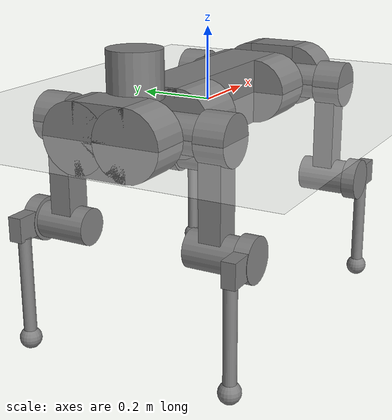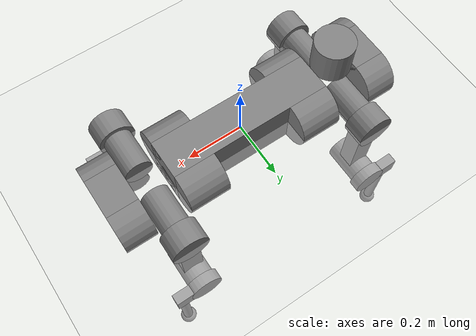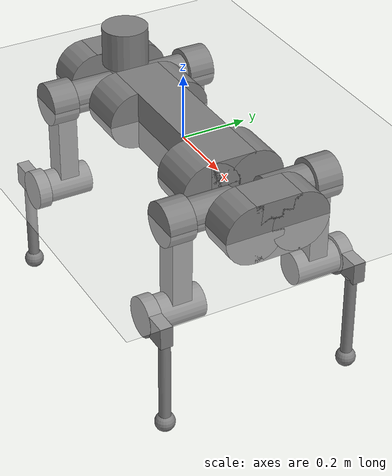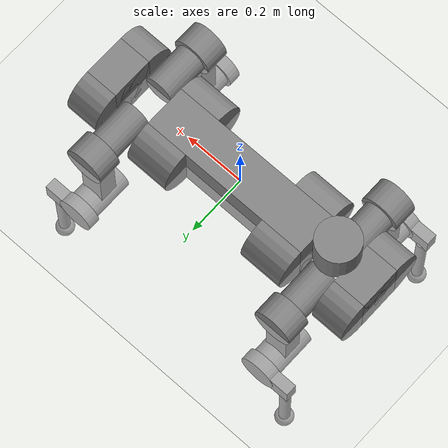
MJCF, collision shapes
<mujoco model="anymal_c">
  <compiler angle="radian" meshdir="assets" texturedir="assets" autolimits="true"/>

  <option cone="pyramidal" impratio="100" timestep="0.005"/>

  <default>
    <geom solref="-1000 -80"/>
    <material specular="0" shininess="0.25"/>
    <default class="anymal_c">
      <joint damping="1" frictionloss="0.1"/>

      <default class="visual">
        <geom type="mesh" contype="0" conaffinity="0" group="2"/>
        <default class="visual_zflip">
          <geom quat="0 0 0 1"/>
        </default>
      </default>
      <default class="collision">
        <geom group="3" type="cylinder"/>
        <default class="foot">
          <geom type="sphere" size="0.03" pos="0 0 0.02325" priority="1" solimp="0.015 1 0.031" condim="6"
            friction="0.8 0.02 0.01"/>
        </default>
      </default>
    </default>
    <motor ctrllimited="true" ctrlrange="-80.0 80.0"/>
  </default>

  <asset>
    <texture type="skybox" builtin="gradient" rgb1=".3 .5 .7" rgb2="0 0 0" width="32" height="512"/>

    <texture name="texplane" type="2d" builtin="checker" rgb1="0.5 0.6 0.7" rgb2="0.2 0.3 0.4" width="100" height="100"/>
    <material name="MatPlane" reflectance="0.5" texture="texplane" texrepeat="1 1" texuniform="true"></material>

    <texture name="grid" type="2d" builtin="checker" rgb1="0.5 0.6 0.7" rgb2="0.2 0.3 0.4" width="512" height="512"/>
    <material name="grid" reflectance="0.5" texture="grid" texrepeat="1 1" texuniform="true"></material>

    <material name="black_plastic" rgba="0.007 0.007 0.007 1"/>
    <material name="green" rgba="0.052 0.178 0.033 1"/>
    <material name="red" rgba="0.178 0.006 0.005 1"/>
    <material name="yellow" rgba="0.178 0.119 0.006 1"/>
    <material name="lwl" rgba="0.8 0.8 0.8 1"/>
    <material name="base" texture="base"/>
    <material name="top_shell" texture="top_shell"/>
    <material name="bottom_shell" texture="bottom_shell"/>
    <material name="hip_l" texture="hip_l"/>
    <material name="thigh" texture="thigh"/>
    <material name="shank_l" texture="shank_l"/>
    <material name="foot" texture="foot"/>
    <material name="hip_r" texture="hip_r"/>
    <material name="shank" texture="shank_r"/>
    <material name="hatch" texture="hatch"/>
    <material name="remote" texture="remote"/>
    <material name="handle" texture="handle"/>
    <material name="face" texture="face"/>
    <material name="depth_camera" texture="depth_camera"/>
    <material name="wide_angle_camera" texture="wide_angle_camera"/>
    <material name="battery" texture="battery"/>
    <material name="lidar_cage" texture="lidar_cage"/>
    <material name="lidar" texture="lidar"/>
    <material name="drive" texture="drive"/>

    <texture type="2d" name="base" file="base.png"/>
    <texture type="2d" name="top_shell" file="top_shell.png"/>
    <texture type="2d" name="bottom_shell" file="bottom_shell.png"/>
    <texture type="2d" name="remote" file="remote.png"/>
    <texture type="2d" name="hatch" file="hatch.png"/>
    <texture type="2d" name="handle" file="handle.png"/>
    <texture type="2d" name="face" file="face.png"/>
    <texture type="2d" name="battery" file="battery.png"/>
    <texture type="2d" name="lidar_cage" file="lidar_cage.png"/>
    <texture type="2d" name="depth_camera" file="depth_camera.png"/>
    <texture type="2d" name="wide_angle_camera" file="wide_angle_camera.png"/>
    <texture type="2d" name="lidar" file="lidar.png"/>
    <texture type="2d" name="drive" file="drive.png"/>
    <texture type="2d" name="hip_l" file="hip_l.png"/>
    <texture type="2d" name="shank_l" file="shank_l.png"/>
    <texture type="2d" name="foot" file="foot.png"/>
    <texture type="2d" name="thigh" file="thigh.png"/>
    <texture type="2d" name="shank_r" file="shank_r.png"/>
    <texture type="2d" name="hip_r" file="hip_r.png"/>

    <mesh file="base_0.obj"/>
    <mesh file="base_1.obj"/>
    <mesh file="base_2.obj"/>
    <mesh file="base_3.obj"/>
    <mesh file="base_4.obj"/>
    <mesh file="base_5.obj"/>
    <mesh file="top_shell.obj"/>
    <mesh file="bottom_shell.obj"/>
    <mesh file="remote.obj"/>
    <mesh file="handle.obj"/>
    <mesh file="face.obj"/>
    <mesh file="wide_angle_camera.obj"/>
    <mesh file="depth_camera.obj"/>
    <mesh file="battery.obj"/>
    <mesh file="lidar_cage.obj"/>
    <mesh file="lidar.obj"/>
    <mesh file="drive.obj"/>
    <mesh file="hip_l.obj"/>
    <mesh file="thigh.obj"/>
    <mesh file="shank_l.obj"/>
    <mesh file="foot.obj"/>
    <mesh file="hip_r.obj"/>
    <mesh file="hatch.obj"/>
    <mesh file="shank_r.obj"/>
  </asset>

  <worldbody>
    <geom name="floor" size="0 0 .125" type="plane" material="grid" condim="3" rgba="0.9 0.9 0.9 1"/>

    <light cutoff="100" diffuse="1 1 1" dir="-0 0 -1.3" directional="true" exponent="1" pos="0 0 1.3" specular=".1 .1 .1" castshadow="false"/>
    <light name="spotlight" mode="targetbodycom" target="trunk" pos="0 0 15"/>

    <body name="trunk" pos="0 0 0" childclass="anymal_c">
      <camera name="track" mode="trackcom" pos="0 -2 0" xyaxes="1 0 0 0 0 1"/>
      <freejoint/>

      <inertial mass="19.2035" pos="0.0025 0 0.0502071" quat="0.5 0.5 0.5 0.5" diaginertia="0.639559 0.624031 0.217374"/>

      <geom mesh="base_0" material="green" class="visual"/>
      <geom mesh="base_1" material="yellow" class="visual"/>
      <geom mesh="base_2" material="red" class="visual"/>
      <geom mesh="base_3" material="black_plastic" class="visual"/>
      <geom mesh="base_4" material="lwl" class="visual"/>
      <geom mesh="base_5" material="base" class="visual"/>
      <geom class="collision" size="0.29 0.07 0.09" type="box" name="trunk_1"/>
      <geom class="collision" size="0.09 0.0725" pos="0.2175 0.07 0" quat="1 0 1 0" name="trunk_2"/>
      <geom class="collision" size="0.09 0.0725" pos="-0.2175 0.07 0" quat="1 0 1 0" name="trunk_3"/>
      <geom class="collision" size="0.09 0.0725" pos="0.2175 -0.07 0" quat="1 0 1 0" name="trunk_4"/>
      <geom class="collision" size="0.09 0.0725" pos="-0.2175 -0.07 0" quat="1 0 1 0" name="trunk_5"/>
      <geom material="top_shell" mesh="top_shell" class="visual"/>
      <geom material="bottom_shell" mesh="bottom_shell" class="visual"/>
      <geom material="remote" mesh="remote" class="visual"/>
      <geom material="handle" mesh="handle" class="visual"/>
      <geom pos="0.4145 0 0" material="face" mesh="face" class="visual"/>
      <geom class="collision" size="0.055 0.07 0.09" pos="0.4695 0 0" type="box" name="trunk_6"/>
      <geom class="collision" size="0.09 0.055" pos="0.4695 0.07 0" quat="1 0 1 0"/>
      <geom class="collision" size="0.09 0.055" pos="0.4695 -0.07 0" quat="1 0 1 0"/>
      <geom pos="0.46165 0 -0.0292" quat="0.965926 0 0.258819 0" material="depth_camera" mesh="depth_camera"
        class="visual"/>
      <geom pos="0.513 0 0.01497" material="wide_angle_camera" mesh="wide_angle_camera" class="visual"/>
      <geom pos="-0.4145 0 0" material="face" mesh="face" class="visual_zflip"/>
      <geom class="collision" size="0.055 0.07 0.09" pos="-0.4695 0 0" quat="0 0 0 1" type="box" name="trunk_7"/>
      <geom class="collision" size="0.09 0.055" pos="-0.4695 -0.07 0" quat="0 -1 0 1"/>
      <geom class="collision" size="0.09 0.055" pos="-0.4695 0.07 0" quat="0 -1 0 1"/>
      <geom pos="-0.46165 0 -0.0292" quat="0 -0.258819 0 0.965926" material="depth_camera" mesh="depth_camera"
        class="visual"/>
      <geom pos="-0.513 0 0.01497" material="wide_angle_camera" mesh="wide_angle_camera" class="visual_zflip"/>
      <geom material="battery" mesh="battery" class="visual"/>
      <geom pos="0 0.07646 0.02905" quat="0.683013 -0.183013 0.183013 0.683013" material="depth_camera"
        mesh="depth_camera" class="visual"/>
      <geom pos="0 -0.07646 0.02905" quat="0.683013 0.183013 0.183013 -0.683013" material="depth_camera"
        mesh="depth_camera" class="visual"/>
      <geom pos="-0.364 0 0.0735" material="lidar_cage" mesh="lidar_cage" class="visual"/>
      <geom class="collision" size="0.07 0.06" pos="-0.364 0 0.1335" name="trunk_8"/>
      <geom pos="-0.364 0 0.1422" quat="1 0 0 -1" material="lidar" mesh="lidar" class="visual"/>
      <geom pos="0.2999 0.104 0" quat="0.258819 0.965926 0 0" material="drive" mesh="drive" class="visual"/>
      <geom pos="0.2999 -0.104 0" quat="0.258819 -0.965926 0 0" material="drive" mesh="drive" class="visual"/>
      <geom pos="-0.2999 0.104 0" quat="0 0 0.965926 -0.258819" material="drive" mesh="drive" class="visual"/>
      <geom pos="-0.2999 -0.104 0" quat="0 0 -0.965926 -0.258819" material="drive" mesh="drive" class="visual"/>
      <geom pos="0.116 0 0.073" material="hatch" mesh="hatch" class="visual"/>

      <body name="LF_HIP" pos="0.2999 0.104 0" quat="0.258819 0.965926 0 0">
        <inertial mass="2.781" pos="0.0566606 -0.015294 -0.00829784" quat="-0.127978 0.709783 -0.135278 0.679359"
          diaginertia="0.00585729 0.00491868 0.00329081"/>
        <joint name="LF_HAA" axis="1 0 0" range="-0.72 0.49"/>
        <geom quat="0.258819 -0.965926 0 0" material="hip_l" mesh="hip_l" class="visual"/>
        <geom pos="0.0599 -0.0725816 -0.041905" quat="0.183013 -0.683013 0.683013 0.183013" material="drive"
          mesh="drive" class="visual"/>
        <geom class="collision" size="0.05 0.07" pos="0.0599 -0.0119598 -0.006905"
          quat="-0.353553 -0.612372 0.612372 -0.353553"/>
        <body name="LF_THIGH" pos="0.0599 -0.0725816 -0.041905" quat="0.183013 -0.683013 0.683013 0.183013">
          <inertial mass="3.071" pos="0.0308147 4.64995e-05 -0.245696" quat="0.993166 -0.00515309 -0.0806592 0.0841972"
            diaginertia="0.03025 0.0298943 0.00418465"/>
          <joint name="LF_HFE" axis="1 0 0" range="-3.14 3.14"/>
          <geom quat="1 0 0 -1" material="thigh" mesh="thigh" class="visual"/>
          <geom class="collision" size="0.065 0.04" pos="0.04 0 0" quat="0.5 0.5 -0.5 -0.5"/>
          <geom class="collision" size="0.0375 0.03 0.141314" pos="0.03 0 -0.141314" quat="1 0 0 -1" type="box"/>
          <geom pos="0.1003 0 -0.285" material="drive" mesh="drive" class="visual"/>
          <geom class="collision" size="0.05 0.07" pos="0.0303 0 -0.285" quat="1 0 1 0"/>
          <body name="LF_SHANK" pos="0.1003 0 -0.285">
            <inertial mass="0.58842" pos="0.005462 -0.0612528 -0.0806598"
              quat="0.992934 -0.115904 -0.00105487 -0.0254421" diaginertia="0.0101637 0.00923838 0.00111927"/>
            <joint name="LF_KFE" axis="1 0 0" range="-3.14 3.14"/>
            <geom quat="1 0 0 -1" material="shank_l" mesh="shank_l" class="visual"/>
            <geom class="collision" size="0.06 0.02" pos="0.02 0 0" quat="0.5 0.5 -0.5 -0.5" name="LF_kfe_act"/>
            <geom class="collision" size="0.057499 0.03375 0.019" pos="0.02 -0.057499 0" quat="0.5 0.5 -0.5 -0.5"
              type="box"/>
            <geom pos="0.01305 -0.08795 -0.33797" quat="0.382683 0 0 -0.92388" material="foot" mesh="foot"
              class="visual"/>
            <geom class="collision" size="0.0175 0.141252" pos="0.01305 -0.08795 -0.168985" quat="1 0 0 -1" name="LF_calf"/>
            <geom class="foot" pos="0.01305 -0.08795 -0.31547" quat="1 0 0 -1" name="LF_foot"/>
          </body>
        </body>
      </body>
      <body name="RF_HIP" pos="0.2999 -0.104 0" quat="0.258819 -0.965926 0 0">
        <inertial mass="2.781" pos="0.0567633 0.015294 -0.00829784" quat="0.13524 0.679072 0.127985 0.710065"
          diaginertia="0.00585928 0.0049205 0.00329064"/>
        <joint name="RF_HAA" axis="1 0 0" range="-0.49 0.72"/>
        <geom quat="0.258819 0.965926 0 0" material="hip_r" mesh="hip_r" class="visual"/>
        <geom pos="0.0599 0.0725816 -0.041905" quat="0.183013 0.683013 0.683013 -0.183013" material="drive" mesh="drive"
          class="visual"/>
        <geom class="collision" size="0.05 0.07" pos="0.0599 0.0119598 -0.006905"
          quat="-0.353553 0.612372 0.612372 0.353553"/>
        <body name="RF_THIGH" pos="0.0599 0.0725816 -0.041905" quat="0.183013 0.683013 0.683013 -0.183013">
          <inertial mass="3.071" pos="0.0308147 4.64995e-05 -0.245696" quat="0.992775 -0.00512735 -0.0806685 0.0886811"
            diaginertia="0.0302511 0.0298933 0.0041845"/>
          <joint name="RF_HFE" axis="1 0 0" range="-3.14 3.14"/>
          <geom quat="1 0 0 -1" material="thigh" mesh="thigh" class="visual"/>
          <geom class="collision" size="0.065 0.04" pos="0.04 0 0" quat="0.5 0.5 0.5 0.5"/>
          <geom class="collision" size="0.0375 0.03 0.141314" pos="0.03 0 -0.141314" quat="1 0 0 1" type="box"/>
          <geom pos="0.1003 0 -0.285" material="drive" mesh="drive" class="visual"/>
          <geom class="collision" size="0.05 0.07" pos="0.0303 0 -0.285" quat="1 0 1 0"/>
          <body name="RF_SHANK" pos="0.1003 0 -0.285">
            <inertial mass="0.58842" pos="0.005462 0.0612528 -0.0806598" quat="0.992934 0.115904 -0.00105487 0.0254421"
              diaginertia="0.0101637 0.00923838 0.00111927"/>
            <joint name="RF_KFE" axis="1 0 0" range="-3.14 3.14"/>
            <geom quat="1 0 0 1" material="shank" mesh="shank_r" class="visual"/>
            <geom class="collision" size="0.06 0.02" pos="0.02 0 0" quat="0.5 0.5 0.5 0.5" name="RF_kfe_act"/>
            <geom class="collision" size="0.057499 0.03375 0.019" pos="0.02 0.057499 0" quat="0.5 0.5 0.5 0.5"
              type="box"/>
            <geom pos="0.01305 0.08795 -0.33797" quat="0.382683 0 0 0.92388" material="foot" mesh="foot" class="visual"/>
            <geom class="collision" size="0.0175 0.141252" pos="0.01305 0.08795 -0.168985" quat="1 0 0 1" name="RF_calf"/>
            <geom class="foot" pos="0.01305 0.08795 -0.31547" quat="1 0 0 1" name="RF_foot"/>
          </body>
        </body>
      </body>
      <body name="LH_HIP" pos="-0.2999 0.104 0" quat="0 0 0.965926 -0.258819">
        <inertial mass="2.781" pos="0.0567633 0.015294 -0.00829784" quat="0.13524 0.679072 0.127985 0.710065"
          diaginertia="0.00585928 0.0049205 0.00329064"/>
        <joint name="LH_HAA" axis="1 0 0" range="-0.49 0.72"/>
        <geom quat="-0.258819 -0.965926 0 0" material="hip_r" mesh="hip_r" class="visual"/>
        <geom pos="0.0599 0.0725816 -0.041905" quat="0.183013 0.683013 0.683013 -0.183013" material="drive" mesh="drive"
          class="visual"/>
        <geom class="collision" size="0.05 0.07" pos="0.0599 0.0119598 -0.006905"
          quat="-0.353553 0.612372 0.612372 0.353553"/>
        <body name="LH_THIGH" pos="0.0599 0.0725816 -0.041905" quat="0.183013 0.683013 0.683013 -0.183013">
          <inertial mass="3.071" pos="0.0308147 4.64995e-05 -0.245696" quat="0.992775 -0.00512735 -0.0806685 0.0886811"
            diaginertia="0.0302511 0.0298933 0.0041845"/>
          <joint name="LH_HFE" axis="1 0 0" range="-3.14 3.14"/>
          <geom quat="1 0 0 -1" material="thigh" mesh="thigh" class="visual"/>
          <geom class="collision" size="0.065 0.04" pos="0.04 0 0" quat="0.5 0.5 -0.5 -0.5"/>
          <geom class="collision" size="0.0375 0.03 0.141314" pos="0.03 0 -0.141314" quat="1 0 0 -1" type="box"/>
          <geom pos="0.1003 0 -0.285" material="drive" mesh="drive" class="visual"/>
          <geom class="collision" size="0.05 0.07" pos="0.0303 0 -0.285" quat="1 0 1 0"/>
          <body name="LH_SHANK" pos="0.1003 0 -0.285">
            <inertial mass="0.58842" pos="0.005462 0.0612528 -0.0806598" quat="0.992934 0.115904 -0.00105487 0.0254421"
              diaginertia="0.0101637 0.00923838 0.00111927"/>
            <joint name="LH_KFE" axis="1 0 0" range="-3.14 3.14"/>
            <geom quat="-1 0 0 -1" material="shank" mesh="shank_r" class="visual"/>
            <geom class="collision" size="0.06 0.02" pos="0.02 0 0" quat="0.5 0.5 -0.5 -0.5" name="LH_kfe_act"/>
            <geom class="collision" size="0.057499 0.03375 0.019" pos="0.02 0.057499 0" quat="0.5 0.5 -0.5 -0.5"
              type="box"/>
            <geom pos="0.01305 0.08795 -0.33797" quat="-0.382683 0 0 -0.92388" material="foot" mesh="foot"
              class="visual"/>
            <geom class="collision" size="0.0175 0.141252" pos="0.01305 0.08795 -0.168985" quat="1 0 0 -1" name="LH_calf"/>
            <geom class="foot" pos="0.01305 0.08795 -0.31547" quat="1 0 0 -1" name="LH_foot"/>
          </body>
        </body>
      </body>
      <body name="RH_HIP" pos="-0.2999 -0.104 0" quat="0 0 -0.965926 -0.258819">
        <inertial mass="2.781" pos="0.0566606 -0.015294 -0.00829784" quat="-0.127978 0.709783 -0.135278 0.679359"
          diaginertia="0.00585729 0.00491868 0.00329081"/>
        <joint name="RH_HAA" axis="1 0 0" range="-0.72 0.49"/>
        <geom quat="-0.258819 0.965926 0 0" material="hip_l" mesh="hip_l" class="visual"/>
        <geom pos="0.0599 -0.0725816 -0.041905" quat="-0.183013 0.683013 -0.683013 -0.183013" material="drive"
          mesh="drive" class="visual"/>
        <geom class="collision" size="0.05 0.07" pos="0.0599 -0.0119598 -0.006905"
          quat="0.353553 0.612372 -0.612372 0.353553"/>
        <body name="RH_THIGH" pos="0.0599 -0.0725816 -0.041905" quat="-0.183013 0.683013 -0.683013 -0.183013">
          <inertial mass="3.071" pos="0.0308147 4.64995e-05 -0.245696" quat="0.993166 -0.00515309 -0.0806592 0.0841972"
            diaginertia="0.03025 0.0298943 0.00418465"/>
          <joint name="RH_HFE" axis="1 0 0" range="-3.14 3.14"/>
          <geom quat="1 0 0 -1" material="thigh" mesh="thigh" class="visual"/>
          <geom class="collision" size="0.065 0.04" pos="0.04 0 0" quat="0.5 0.5 0.5 0.5"/>
          <geom class="collision" size="0.0375 0.03 0.141314" pos="0.03 0 -0.141314" quat="1 0 0 1" type="box"/>
          <geom pos="0.1003 0 -0.285" material="drive" mesh="drive" class="visual"/>
          <geom class="collision" size="0.05 0.07" pos="0.0303 0 -0.285" quat="1 0 1 0"/>
          <body name="RH_SHANK" pos="0.1003 0 -0.285">
            <inertial mass="0.58842" pos="0.005462 -0.0612528 -0.0806598"
              quat="0.992934 -0.115904 -0.00105487 -0.0254421" diaginertia="0.0101637 0.00923838 0.00111927"/>
            <joint name="RH_KFE" axis="1 0 0" range="-3.14 3.14"/>
            <geom quat="1 0 0 -1" material="shank_l" mesh="shank_l" class="visual"/>
            <geom class="collision" size="0.06 0.02" pos="0.02 0 0" quat="0.5 0.5 0.5 0.5" name="RH_kfe_act"/>
            <geom class="collision" size="0.057499 0.03375 0.019" pos="0.02 -0.057499 0" quat="0.5 0.5 0.5 0.5"
              type="box"/>
            <geom pos="0.01305 -0.08795 -0.33797" quat="0.382683 0 0 -0.92388" material="foot" mesh="foot"
              class="visual"/>
            <geom class="collision" size="0.0175 0.141252" pos="0.01305 -0.08795 -0.168985" quat="1 0 0 1" name="RH_calf"/>
            <geom class="foot" pos="0.01305 -0.08795 -0.31547" quat="1 0 0 1" name="RH_foot"/>
          </body>
        </body>
      </body>
    </body>
  </worldbody>

  <contact>
    <exclude body1="trunk" body2="LF_THIGH"/>
    <exclude body1="trunk" body2="RF_THIGH"/>
    <exclude body1="trunk" body2="LH_THIGH"/>
    <exclude body1="trunk" body2="RH_THIGH"/>
  </contact>

  <actuator>
    <motor joint="LF_HAA" name="LF_HAA" />
    <motor joint="LF_HFE" name="LF_HFE"/>
    <motor joint="LF_KFE" name="LF_KFE"/>
    <motor joint="RF_HAA" name="RF_HAA"/>
    <motor joint="RF_HFE" name="RF_HFE"/>
    <motor joint="RF_KFE" name="RF_KFE"/>
    <motor joint="LH_HAA" name="LH_HAA"/>
    <motor joint="LH_HFE" name="LH_HFE"/>
    <motor joint="LH_KFE" name="LH_KFE"/>
    <motor joint="RH_HAA" name="RH_HAA"/>
    <motor joint="RH_HFE" name="RH_HFE"/>
    <motor joint="RH_KFE" name="RH_KFE"/>
  </actuator>

  <keyframe>
    <key name="home" qpos="0 0 0.55 1 0 0 0 0.0 0.4 -0.8 0.0 -0.4 0.8 0.0 -0.4 0.8 0.0 0.4 -0.8"/>
  </keyframe>
</mujoco>
